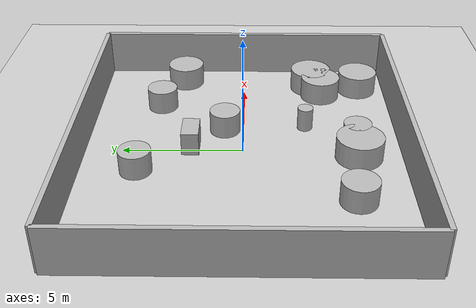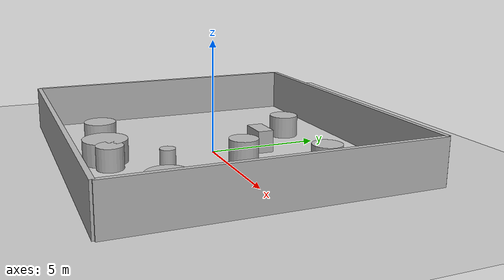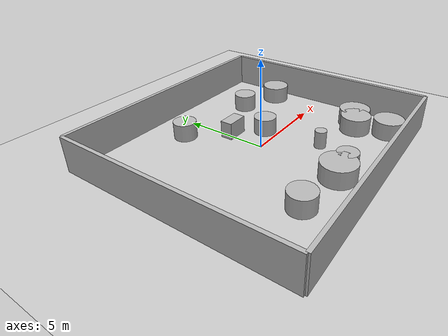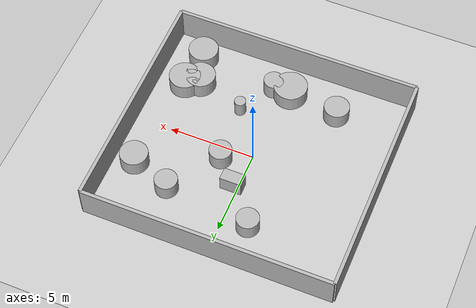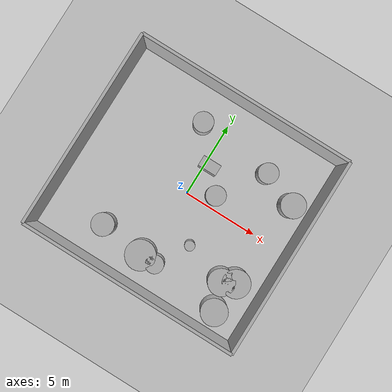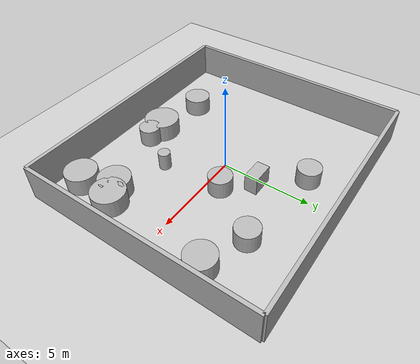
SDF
<?xml version="1.0"?>
<sdf version="1.6">
  <world name="env_38">

    <include><uri>model://ground_plane</uri></include>
    <include><uri>model://sun</uri></include>

    <!-- WALLS -->
    <model name="wall_north"><static>true</static><pose>0 6.643812086259248 1 0 0 0</pose>
      <link name="link"><collision name="collision">
        <geometry><box><size>14.504593837507185 0.2 2</size></box></geometry>
      </collision><visual name="visual">
        <geometry><box><size>14.504593837507185 0.2 2</size></box></geometry>
      </visual></link>
    </model>

    <model name="wall_south"><static>true</static><pose>0 -6.643812086259248 1 0 0 0</pose>
      <link name="link"><collision name="collision">
        <geometry><box><size>14.504593837507185 0.2 2</size></box></geometry>
      </collision><visual name="visual">
        <geometry><box><size>14.504593837507185 0.2 2</size></box></geometry>
      </visual></link>
    </model>

    <model name="wall_east"><static>true</static><pose>7.252296918753593 0 1 0 0 1.57</pose>
      <link name="link"><collision name="collision">
        <geometry><box><size>13.287624172518496 0.2 2</size></box></geometry>
      </collision><visual name="visual">
        <geometry><box><size>13.287624172518496 0.2 2</size></box></geometry>
      </visual></link>
    </model>

    <model name="wall_west"><static>true</static><pose>-7.252296918753593 0 1 0 0 1.57</pose>
      <link name="link"><collision name="collision">
        <geometry><box><size>13.287624172518496 0.2 2</size></box></geometry>
      </collision><visual name="visual">
        <geometry><box><size>13.287624172518496 0.2 2</size></box></geometry>
      </visual></link>
    </model>

    <!-- SENSOR -->

    <model name="lidar_sensor">
      <static>true</static>
      <pose>-6.055738884986255 2.4169716408312505 0.4 0 0 0</pose>
      <link name="link">
        <sensor name="lidar" type="ray">
          <pose>0 0 0 0 0 0</pose>
          <visualize>true</visualize>
          <always_on>true</always_on>
          <update_rate>10</update_rate>
          <ray>
            <scan><horizontal>
              <samples>240</samples>
              <resolution>1</resolution>
              <min_angle>-3.14159</min_angle>
              <max_angle>3.14159</max_angle>
            </horizontal></scan>
            <range><min>0.15</min><max>20.0</max><resolution>0.01</resolution></range>
          </ray>
          <plugin name="lidar_plugin" filename="liblidar_plugin.so"/>
        </sensor>
      </link>
    </model>

    <!-- OBSTACLES -->

    <model name="obstacle_0">
      <static>true</static>
      <pose>-1.4458775505032735 4.252135163073501 0.5 0 0 0</pose>
      <link name="link">
        <collision name="collision">
          <geometry><cylinder><radius>0.66</radius><length>1.0</length></cylinder></geometry>
        </collision>
        <visual name="visual">
          <geometry><cylinder><radius>0.66</radius><length>1.0</length></cylinder></geometry>
        </visual>
      </link>
    </model>

    <model name="obstacle_1">
      <static>true</static>
      <pose>1.6157423355356437 0.7973870775961576 0.5 0 0 0</pose>
      <link name="link">
        <collision name="collision">
          <geometry><cylinder><radius>0.65</radius><length>1.0</length></cylinder></geometry>
        </collision>
        <visual name="visual">
          <geometry><cylinder><radius>0.65</radius><length>1.0</length></cylinder></geometry>
        </visual>
      </link>
    </model>

    <model name="obstacle_2">
      <static>true</static>
      <pose>-0.3934644465597277 -4.741492094796219 0.5 0 0 0</pose>
      <link name="link">
        <collision name="collision">
          <geometry><cylinder><radius>0.98</radius><length>1.0</length></cylinder></geometry>
        </collision>
        <visual name="visual">
          <geometry><cylinder><radius>0.98</radius><length>1.0</length></cylinder></geometry>
        </visual>
      </link>
    </model>

    <model name="obstacle_3">
      <static>true</static>
      <pose>-3.3489051965303123 -4.373288803794386 0.5 0 0 0</pose>
      <link name="link">
        <collision name="collision">
          <geometry><cylinder><radius>0.74</radius><length>1.0</length></cylinder></geometry>
        </collision>
        <visual name="visual">
          <geometry><cylinder><radius>0.74</radius><length>1.0</length></cylinder></geometry>
        </visual>
      </link>
    </model>

    <model name="obstacle_4">
      <static>true</static>
      <pose>1.8751116343989258 -2.6586576382435894 0.5 0 0 0</pose>
      <link name="link">
        <collision name="collision">
          <geometry><cylinder><radius>0.33</radius><length>1.0</length></cylinder></geometry>
        </collision>
        <visual name="visual">
          <geometry><cylinder><radius>0.33</radius><length>1.0</length></cylinder></geometry>
        </visual>
      </link>
    </model>

    <model name="obstacle_5">
      <static>true</static>
      <pose>5.976490355054449 2.8002294816015008 0.5 0 0 0</pose>
      <link name="link">
        <collision name="collision">
          <geometry><cylinder><radius>0.81</radius><length>1.0</length></cylinder></geometry>
        </collision>
        <visual name="visual">
          <geometry><cylinder><radius>0.81</radius><length>1.0</length></cylinder></geometry>
        </visual>
      </link>
    </model>

    <model name="obstacle_6">
      <static>true</static>
      <pose>0.30948324476136335 2.173820334666547 0.5 0 0 0</pose>
      <link name="link">
        <collision name="collision">
          <geometry><box><size>1.25 0.72 1.0</size></box></geometry>
        </collision>
        <visual name="visual">
          <geometry><box><size>1.25 0.72 1.0</size></box></geometry>
        </visual>
      </link>
    </model>

    <model name="obstacle_7">
      <static>true</static>
      <pose>0.6403248575447202 -4.755186475078572 0.5 0 0 0</pose>
      <link name="link">
        <collision name="collision">
          <geometry><cylinder><radius>0.59</radius><length>1.0</length></cylinder></geometry>
        </collision>
        <visual name="visual">
          <geometry><cylinder><radius>0.59</radius><length>1.0</length></cylinder></geometry>
        </visual>
      </link>
    </model>

    <model name="obstacle_8">
      <static>true</static>
      <pose>5.28642530637025 -5.298866835924375 0.5 0 0 0</pose>
      <link name="link">
        <collision name="collision">
          <geometry><cylinder><radius>0.87</radius><length>1.0</length></cylinder></geometry>
        </collision>
        <visual name="visual">
          <geometry><cylinder><radius>0.87</radius><length>1.0</length></cylinder></geometry>
        </visual>
      </link>
    </model>

    <model name="obstacle_9">
      <static>true</static>
      <pose>4.70440441449183 -3.519171014780895 0.5 0 0 0</pose>
      <link name="link">
        <collision name="collision">
          <geometry><cylinder><radius>0.87</radius><length>1.0</length></cylinder></geometry>
        </collision>
        <visual name="visual">
          <geometry><cylinder><radius>0.87</radius><length>1.0</length></cylinder></geometry>
        </visual>
      </link>
    </model>

    <model name="obstacle_10">
      <static>true</static>
      <pose>3.624933117116284 3.6845811942501774 0.5 0 0 0</pose>
      <link name="link">
        <collision name="collision">
          <geometry><cylinder><radius>0.66</radius><length>1.0</length></cylinder></geometry>
        </collision>
        <visual name="visual">
          <geometry><cylinder><radius>0.66</radius><length>1.0</length></cylinder></geometry>
        </visual>
      </link>
    </model>

    <model name="obstacle_11">
      <static>true</static>
      <pose>5.5225072722735105 -3.1233263697687197 0.5 0 0 0</pose>
      <link name="link">
        <collision name="collision">
          <geometry><cylinder><radius>0.91</radius><length>1.0</length></cylinder></geometry>
        </collision>
        <visual name="visual">
          <geometry><cylinder><radius>0.91</radius><length>1.0</length></cylinder></geometry>
        </visual>
      </link>
    </model>

  </world>
</sdf>
